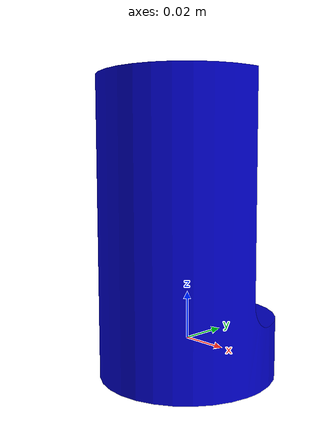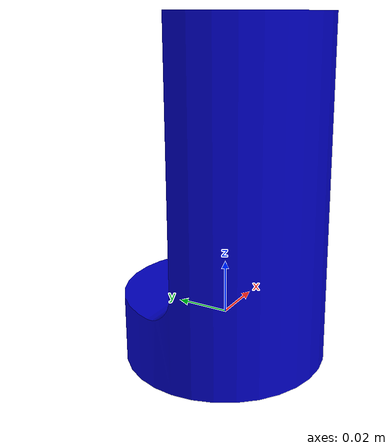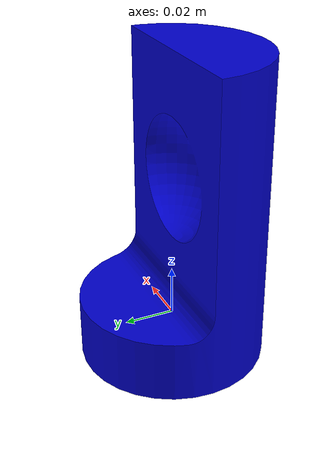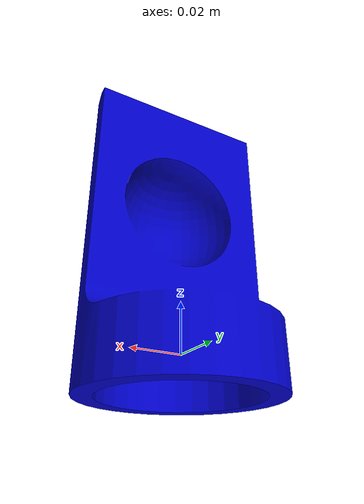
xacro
<?xml version="1.0"?>
<robot xmlns:xacro="http://wiki.ros.org/xacro" name="spoon">
    <xacro:property name="spoon_mesh_col" value="package://custom_ur5/meshes/spoon_mesh.stl"/>
    <xacro:property name="spoon_mesh_vis" value="package://custom_ur5/meshes/spoon_mesh.dae"/>

    <!-- spoon -->
    <link name="spoon">
        <visual>
            <origin xyz="0 0 0" rpy="0 0 0"/>
            <geometry>
                <mesh filename="${spoon_mesh_vis}"/>
            </geometry>
            <material name="spoon_blue">
                <color rgba="0 0 0.8 1"/>
            </material>
        </visual>
        <collision>
            <origin xyz="0 0 0" rpy="0 0 0"/>
            <geometry>
                <mesh filename="${spoon_mesh_col}"/>
            </geometry>
        </collision>
    </link>

    <gazebo reference="spoon">
        <material>Gazebo/BlueTransparent</material>
    </gazebo>

</robot>
